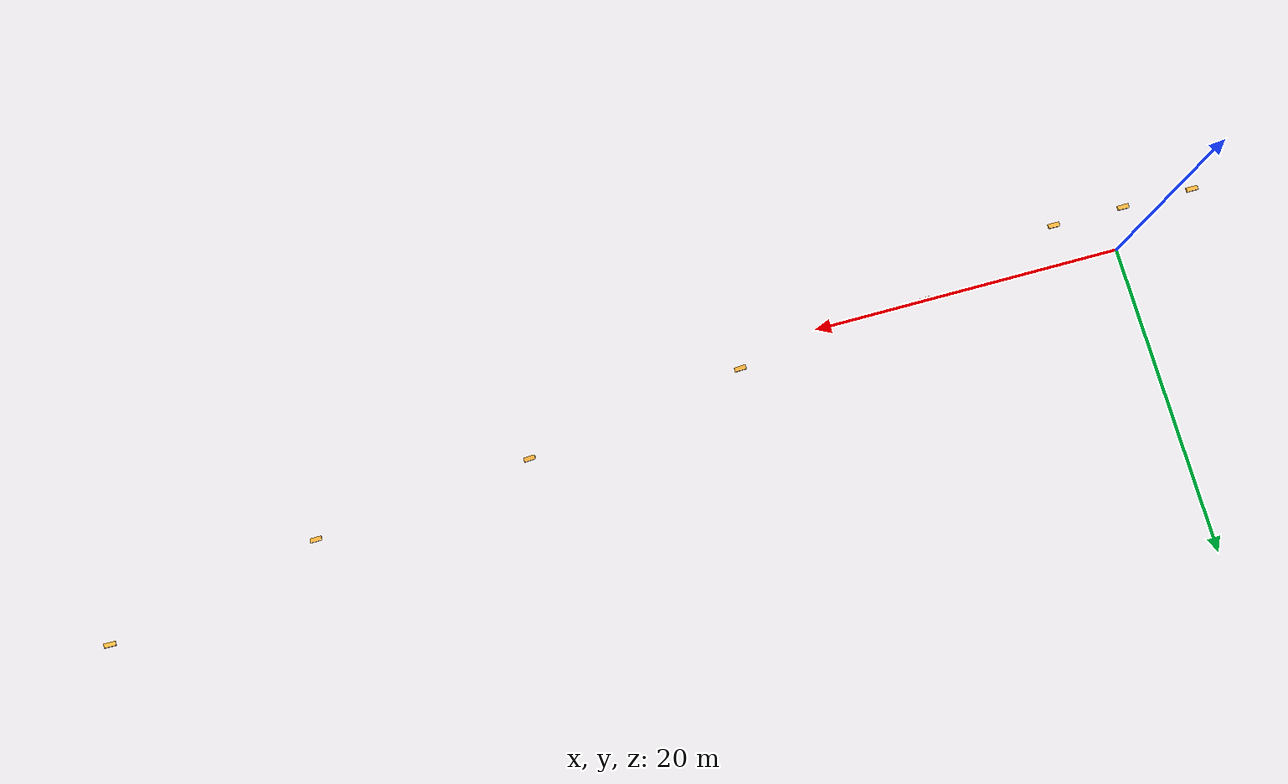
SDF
<?xml version='1.0' encoding='utf-8'?>
<sdf version="1.12">
  <model name="ceiling_lights">
    <static>true</static>
    <link name="lights_link">
      <visual name="ceiling_lights_visual">
        <geometry>
          <mesh>
            <uri>ceiling_lights.obj</uri>
          </mesh>
        </geometry>
        <material>
          <ambient>1 0.72 0.25 1</ambient>
          <diffuse>1 0.72 0.25 1</diffuse>
          <emissive>1 0.72 0.25 1</emissive>
        </material>
      </visual>
      <collision name="ceiling_lights_collision">
        <geometry>
          <mesh>
            <uri>ceiling_lights.obj</uri>
          </mesh>
        </geometry>
      </collision>
    </link>
    <light name="escape_light_01" type="point">
      <pose>-4.5 -1.8 3.53 0 0 0</pose>
      <cast_shadows>true</cast_shadows>
      <diffuse>1 0.72 0.38 1</diffuse>
      <specular>0.45 0.32 0.18 1</specular>
      <attenuation>
        <range>11</range>
        <constant>0.7</constant>
        <linear>0.08</linear>
        <quadratic>0.015</quadratic>
      </attenuation>
    </light>
    <light name="escape_light_02" type="point">
      <pose>0 -1.8 3.53 0 0 0</pose>
      <cast_shadows>true</cast_shadows>
      <diffuse>1 0.72 0.38 1</diffuse>
      <specular>0.45 0.32 0.18 1</specular>
      <attenuation>
        <range>11</range>
        <constant>0.7</constant>
        <linear>0.08</linear>
        <quadratic>0.015</quadratic>
      </attenuation>
    </light>
    <light name="escape_light_03" type="point">
      <pose>4.5 -1.8 3.53 0 0 0</pose>
      <cast_shadows>true</cast_shadows>
      <diffuse>1 0.72 0.38 1</diffuse>
      <specular>0.45 0.32 0.18 1</specular>
      <attenuation>
        <range>11</range>
        <constant>0.7</constant>
        <linear>0.08</linear>
        <quadratic>0.015</quadratic>
      </attenuation>
    </light>
    <light name="escape_light_04" type="point">
      <pose>13.494 0.506844 2.79616 0 0 0</pose>
      <cast_shadows>true</cast_shadows>
      <diffuse>1 0.72 0.38 1</diffuse>
      <specular>0.45 0.32 0.18 1</specular>
      <attenuation>
        <range>11</range>
        <constant>0.7</constant>
        <linear>0.08</linear>
        <quadratic>0.015</quadratic>
      </attenuation>
    </light>
    <light name="escape_light_05" type="point">
      <pose>25.4884 1.50449 1.88848 0 0 0</pose>
      <cast_shadows>true</cast_shadows>
      <diffuse>1 0.72 0.38 1</diffuse>
      <specular>0.45 0.32 0.18 1</specular>
      <attenuation>
        <range>11</range>
        <constant>0.7</constant>
        <linear>0.08</linear>
        <quadratic>0.015</quadratic>
      </attenuation>
    </light>
    <light name="escape_light_06" type="point">
      <pose>39.4879 3.35077 0.782491 0 0 0</pose>
      <cast_shadows>true</cast_shadows>
      <diffuse>1 0.72 0.38 1</diffuse>
      <specular>0.45 0.32 0.18 1</specular>
      <attenuation>
        <range>11</range>
        <constant>0.7</constant>
        <linear>0.08</linear>
        <quadratic>0.015</quadratic>
      </attenuation>
    </light>
    <light name="escape_light_07" type="point">
      <pose>53.4942 4.65053 -0.0104082 0 0 0</pose>
      <cast_shadows>true</cast_shadows>
      <diffuse>1 0.72 0.38 1</diffuse>
      <specular>0.45 0.32 0.18 1</specular>
      <attenuation>
        <range>11</range>
        <constant>0.7</constant>
        <linear>0.08</linear>
        <quadratic>0.015</quadratic>
      </attenuation>
    </light>
    <light name="escape_light_08" type="point">
      <pose>67.0059 7.65271 0.155359 0 0 0</pose>
      <cast_shadows>true</cast_shadows>
      <diffuse>1 0.72 0.38 1</diffuse>
      <specular>0.45 0.32 0.18 1</specular>
      <attenuation>
        <range>11</range>
        <constant>0.7</constant>
        <linear>0.08</linear>
        <quadratic>0.015</quadratic>
      </attenuation>
    </light>
  </model>
</sdf>
